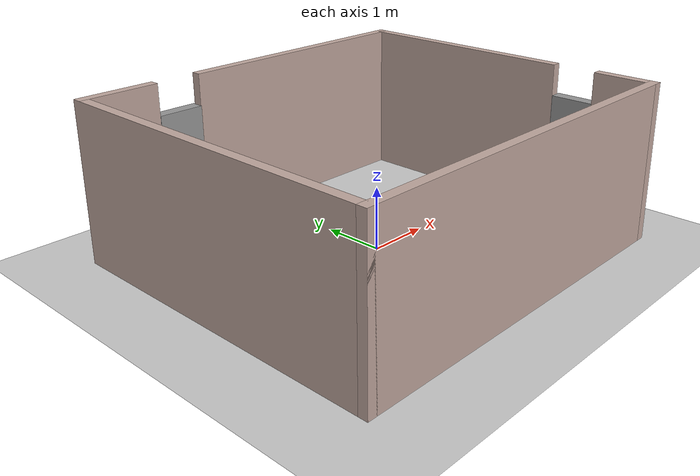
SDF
<sdf version="1.6">
 <world name="default">
  <light name="sun" type="directional">
   <pose>0 0 10 0 -0 0</pose>
   <diffuse>0.8 0.8 0.8 1</diffuse>
   <specular>0.1 0.1 0.1 1</specular>
   <attenuation>
    <range>1000</range>
    <constant>0.9</constant>
    <linear>0.01</linear>
    <quadratic>0.001</quadratic>
   </attenuation>
   <direction>-0.5 0.5 -1</direction>
  </light>
  <model name="ground_plane">
   <static>1</static>
   <link name="link">
    <collision name="collision">
     <geometry><plane><normal>0 0 1</normal><size>100 100</size></plane></geometry>
     <surface><friction><ode><mu>100</mu><mu2>50</mu2></ode></friction></surface>
    </collision>
    <visual name="visual">
     <cast_shadows>0</cast_shadows>
     <geometry><plane><normal>0 0 1</normal><size>100 100</size></plane></geometry>
     <material>
      <script><uri>file://media/materials/scripts/gazebo.material</uri><name>Gazebo/Grey</name></script>
     </material>
    </visual>
   </link>
  </model>
  <gravity>0 0 -9.8</gravity>
  <magnetic_field>6e-06 2.3e-05 -4.2e-05</magnetic_field>
  <atmosphere type="adiabatic"/>
  <physics name="default_physics" default="0" type="ode">
   <max_step_size>0.001</max_step_size>
   <real_time_factor>1</real_time_factor>
   <real_time_update_rate>1000</real_time_update_rate>
  </physics>
  <scene><ambient>0.4 0.4 0.4 1</ambient><background>0.7 0.7 0.7 1</background><shadows>1</shadows></scene>
  <spherical_coordinates>
   <surface_model>EARTH_WGS84</surface_model>
   <latitude_deg>0</latitude_deg>
   <longitude_deg>0</longitude_deg>
   <elevation>0</elevation>
   <heading_deg>0</heading_deg>
  </spherical_coordinates>
  <model name="tabletest">
   <pose>-0.03431 -0.02487 0 0 -0 0</pose>
   <link name="Door_4">
    <collision name="Door_4_Collision">
     <geometry><box><size>0.701206 0.2 2</size></box></geometry>
     <pose>0 0 1 0 -0 0</pose>
    </collision>
    <visual name="Door_4_Visual">
     <pose>0 0 1 0 -0 0</pose>
     <geometry><box><size>0.701206 0.2 2</size></box></geometry>
     <material>
      <script><uri>file://media/materials/scripts/gazebo.material</uri><name>Gazebo/Grey</name></script>
     </material>
    </visual>
    <pose>3.07617 -1.40408 0 0 -0 1.57374</pose>
   </link>
   <link name="Door_5">
    <collision name="Door_5_Collision">
     <geometry><box><size>0.73459 0.2 2</size></box></geometry>
     <pose>0 0 1 0 -0 0</pose>
    </collision>
    <visual name="Door_5_Visual">
     <pose>0 0 1 0 -0 0</pose>
     <geometry><box><size>0.73459 0.2 2</size></box></geometry>
     <material>
      <script><uri>file://media/materials/scripts/gazebo.material</uri><name>Gazebo/Grey</name></script>
     </material>
    </visual>
    <pose>-1.50651 2.69515 0 0 -0 3.13685</pose>
   </link>
   <link name="Wall_12">
    <collision name="Wall_12_Collision">
     <geometry><box><size>5.5 0.15 2.5</size></box></geometry>
     <pose>0 0 1.25 0 -0 0</pose>
    </collision>
    <visual name="Wall_12_Visual">
     <pose>0 0 1.25 0 -0 0</pose>
     <geometry><box><size>5.5 0.15 2.5</size></box></geometry>
     <material>
      <script><uri>file://media/materials/scripts/gazebo.material</uri><name>Gazebo/Grey</name></script>
      <ambient>0.760784 0.662745 0.627451 1</ambient>
     </material>
    </visual>
    <pose>-3.05023 -0.00023 0 0 -0 1.5708</pose>
   </link>
   <link name="Wall_14">
    <collision name="Wall_14_Collision">
     <geometry><box><size>1.25 0.15 2.5</size></box></geometry>
     <pose>0 0 1.25 0 -0 0</pose>
    </collision>
    <visual name="Wall_14_Visual">
     <pose>0 0 1.25 0 -0 0</pose>
     <geometry><box><size>1.25 0.15 2.5</size></box></geometry>
     <material>
      <script><uri>file://media/materials/scripts/gazebo.material</uri><name>Gazebo/Grey</name></script>
      <ambient>0.760784 0.662745 0.627451 1</ambient>
     </material>
    </visual>
    <pose>-2.50023 2.67477 0 0 -0 0</pose>
   </link>
   <link name="Wall_27">
    <collision name="Wall_27_Collision">
     <geometry><box><size>4.25 0.15 2.5</size></box></geometry>
     <pose>0 0 1.25 0 -0 0</pose>
    </collision>
    <visual name="Wall_27_Visual">
     <pose>0 0 1.25 0 -0 0</pose>
     <geometry><box><size>4.25 0.15 2.5</size></box></geometry>
     <material>
      <script><uri>file://media/materials/scripts/gazebo.material</uri><name>Gazebo/Grey</name></script>
      <ambient>0.760784 0.662745 0.627451 1</ambient>
     </material>
    </visual>
    <pose>0.977332 2.67477 0 0 -0 0</pose>
   </link>
   <link name="Wall_31">
    <collision name="Wall_31_Collision">
     <geometry><box><size>1 0.15 2.5</size></box></geometry>
     <pose>0 0 1.25 0 -0 0</pose>
    </collision>
    <visual name="Wall_31_Visual">
     <pose>0 0 1.25 0 -0 0</pose>
     <geometry><box><size>1 0.15 2.5</size></box></geometry>
     <material>
      <script><uri>file://media/materials/scripts/gazebo.material</uri><name>Gazebo/Grey</name></script>
      <ambient>0.760784 0.662745 0.627451 1</ambient>
     </material>
    </visual>
    <pose>3.04977 -2.25023 0 0 -0 1.5708</pose>
   </link>
   <link name="Wall_33">
    <collision name="Wall_33_Collision">
     <geometry><box><size>3.80007 0.15 2.5</size></box></geometry>
     <pose>0 0 1.25 0 -0 0</pose>
    </collision>
    <visual name="Wall_33_Visual">
     <pose>0 0 1.25 0 -0 0</pose>
     <geometry><box><size>3.80007 0.15 2.5</size></box></geometry>
     <material>
      <script><uri>file://media/materials/scripts/gazebo.material</uri><name>Gazebo/Grey</name></script>
      <ambient>0.760784 0.662745 0.627451 1</ambient>
     </material>
    </visual>
    <pose>3.03855 0.84977 0 0 -0 1.57694</pose>
   </link>
   <link name="Wall_7">
    <collision name="Wall_7_Collision">
     <geometry><box><size>6.25 0.15 2.5</size></box></geometry>
     <pose>0 0 1.25 0 -0 0</pose>
    </collision>
    <visual name="Wall_7_Visual">
     <pose>0 0 1.25 0 -0 0</pose>
     <geometry><box><size>6.25 0.15 2.5</size></box></geometry>
     <material>
      <script><uri>file://media/materials/scripts/gazebo.material</uri><name>Gazebo/Grey</name></script>
      <ambient>0.760784 0.662745 0.627451 1</ambient>
     </material>
    </visual>
    <pose>-0.00023 -2.67523 0 0 -0 0</pose>
   </link>
   <static>1</static>
  </model>
  <model name="table">
   <static>0</static>
   <link name="link">
    <collision name="surface">
     <pose>0 0 1 0 -0 0</pose>
     <geometry><box><size>1.5 0.8 0.03</size></box></geometry>
     <surface><friction><ode><mu>0.6</mu><mu2>0.6</mu2></ode></friction></surface>
    </collision>
    <visual name="visual1">
     <pose>0 0 1 0 -0 0</pose>
     <geometry><box><size>1.4 0.8 0.04</size></box></geometry>
     <material>
      <script><uri>file://media/materials/scripts/gazebo.material</uri><name>Gazebo/Wood</name></script>
     </material>
    </visual>
    <collision name="front_left_leg">
     <pose>0.68 0.38 0.5 0 -0 0</pose>
     <geometry><cylinder><radius>0.02</radius><length>1</length></cylinder></geometry>
    </collision>
    <visual name="front_left_leg">
     <pose>0.68 0.38 0.5 0 -0 0</pose>
     <geometry><cylinder><radius>0.02</radius><length>1</length></cylinder></geometry>
     <material>
      <script><uri>file://media/materials/scripts/gazebo.material</uri><name>Gazebo/Grey</name></script>
     </material>
    </visual>
    <collision name="front_right_leg">
     <pose>0.68 -0.38 0.5 0 -0 0</pose>
     <geometry><cylinder><radius>0.02</radius><length>1</length></cylinder></geometry>
    </collision>
    <visual name="front_right_leg">
     <pose>0.68 -0.38 0.5 0 -0 0</pose>
     <geometry><cylinder><radius>0.02</radius><length>1</length></cylinder></geometry>
     <material>
      <script><uri>file://media/materials/scripts/gazebo.material</uri><name>Gazebo/Grey</name></script>
     </material>
    </visual>
    <collision name="back_right_leg">
     <pose>-0.68 -0.38 0.5 0 -0 0</pose>
     <geometry><cylinder><radius>0.02</radius><length>1</length></cylinder></geometry>
    </collision>
    <visual name="back_right_leg">
     <pose>-0.68 -0.38 0.5 0 -0 0</pose>
     <geometry><cylinder><radius>0.02</radius><length>1</length></cylinder></geometry>
     <material>
      <script><uri>file://media/materials/scripts/gazebo.material</uri><name>Gazebo/Grey</name></script>
     </material>
    </visual>
    <collision name="back_left_leg">
     <pose>-0.68 0.38 0.5 0 -0 0</pose>
     <geometry><cylinder><radius>0.02</radius><length>1</length></cylinder></geometry>
    </collision>
    <visual name="back_left_leg">
     <pose>-0.68 0.38 0.5 0 -0 0</pose>
     <geometry><cylinder><radius>0.02</radius><length>1</length></cylinder></geometry>
     <material>
      <script><uri>file://media/materials/scripts/gazebo.material</uri><name>Gazebo/Grey</name></script>
     </material>
    </visual>
    <inertial>
     <inertia><ixx>1</ixx><ixy>0</ixy><ixz>0</ixz><iyy>1</iyy><iyz>0</iyz><izz>1</izz></inertia>
     <mass>1</mass>
    </inertial>
   </link>
   <pose>1.41053 -1.36788 -7e-06 -0 1.1e-05 0.000189</pose>
  </model>
  <model name="table_0">
   <static>0</static>
   <link name="link">
    <collision name="surface">
     <pose>0 0 1 0 -0 0</pose>
     <geometry><box><size>1.5 0.8 0.03</size></box></geometry>
     <surface><friction><ode><mu>0.6</mu><mu2>0.6</mu2></ode></friction></surface>
    </collision>
    <visual name="visual1">
     <pose>0 0 1 0 -0 0</pose>
     <geometry><box><size>1.4 0.8 0.04</size></box></geometry>
     <material>
      <script><uri>file://media/materials/scripts/gazebo.material</uri><name>Gazebo/Wood</name></script>
     </material>
    </visual>
    <collision name="front_left_leg">
     <pose>0.68 0.38 0.5 0 -0 0</pose>
     <geometry><cylinder><radius>0.02</radius><length>1</length></cylinder></geometry>
    </collision>
    <visual name="front_left_leg">
     <pose>0.68 0.38 0.5 0 -0 0</pose>
     <geometry><cylinder><radius>0.02</radius><length>1</length></cylinder></geometry>
     <material>
      <script><uri>file://media/materials/scripts/gazebo.material</uri><name>Gazebo/Grey</name></script>
     </material>
    </visual>
    <collision name="front_right_leg">
     <pose>0.68 -0.38 0.5 0 -0 0</pose>
     <geometry><cylinder><radius>0.02</radius><length>1</length></cylinder></geometry>
    </collision>
    <visual name="front_right_leg">
     <pose>0.68 -0.38 0.5 0 -0 0</pose>
     <geometry><cylinder><radius>0.02</radius><length>1</length></cylinder></geometry>
     <material>
      <script><uri>file://media/materials/scripts/gazebo.material</uri><name>Gazebo/Grey</name></script>
     </material>
    </visual>
    <collision name="back_right_leg">
     <pose>-0.68 -0.38 0.5 0 -0 0</pose>
     <geometry><cylinder><radius>0.02</radius><length>1</length></cylinder></geometry>
    </collision>
    <visual name="back_right_leg">
     <pose>-0.68 -0.38 0.5 0 -0 0</pose>
     <geometry><cylinder><radius>0.02</radius><length>1</length></cylinder></geometry>
     <material>
      <script><uri>file://media/materials/scripts/gazebo.material</uri><name>Gazebo/Grey</name></script>
     </material>
    </visual>
    <collision name="back_left_leg">
     <pose>-0.68 0.38 0.5 0 -0 0</pose>
     <geometry><cylinder><radius>0.02</radius><length>1</length></cylinder></geometry>
    </collision>
    <visual name="back_left_leg">
     <pose>-0.68 0.38 0.5 0 -0 0</pose>
     <geometry><cylinder><radius>0.02</radius><length>1</length></cylinder></geometry>
     <material>
      <script><uri>file://media/materials/scripts/gazebo.material</uri><name>Gazebo/Grey</name></script>
     </material>
    </visual>
    <inertial>
     <inertia><ixx>1</ixx><ixy>0</ixy><ixz>0</ixz><iyy>1</iyy><iyz>0</iyz><izz>1</izz></inertia>
     <mass>1</mass>
    </inertial>
   </link>
   <pose>-1.9373 -0.04826 -8e-06 0 -1.2e-05 -1.57431</pose>
  </model>
  <model name="unit_box_0">
   <pose>-1.59578 -0.05315 1.11422 4.5e-05 2e-06 0.002847</pose>
   <link name="link">
    <inertial>
     <mass>1</mass>
     <inertia>
      <ixx>0.166667</ixx>
      <ixy>0</ixy>
      <ixz>0</ixz>
      <iyy>0.166667</iyy>
      <iyz>0</iyz>
      <izz>0.166667</izz>
     </inertia>
    </inertial>
    <collision name="collision"><geometry><box><size>0.137922 1.39139 0.198529</size></box></geometry></collision>
    <visual name="visual">
     <geometry><box><size>0.137922 1.39139 0.198529</size></box></geometry>
     <material>
      <script><name>Gazebo/Grey</name><uri>file://media/materials/scripts/gazebo.material</uri></script>
     </material>
    </visual>
   </link>
  </model>
  <model name="unit_box_0_clone">
   <pose>1.41585 -1.03279 1.11423 -3.3e-05 2e-06 1.57569</pose>
   <link name="link">
    <inertial>
     <mass>1</mass>
     <inertia>
      <ixx>0.166667</ixx>
      <ixy>0</ixy>
      <ixz>0</ixz>
      <iyy>0.166667</iyy>
      <iyz>0</iyz>
      <izz>0.166667</izz>
     </inertia>
    </inertial>
    <collision name="collision"><geometry><box><size>0.137922 1.39139 0.198529</size></box></geometry></collision>
    <visual name="visual">
     <geometry><box><size>0.137922 1.39139 0.198529</size></box></geometry>
     <material>
      <script><name>Gazebo/Grey</name><uri>file://media/materials/scripts/gazebo.material</uri></script>
     </material>
    </visual>
   </link>
  </model>
 </world>
</sdf>
